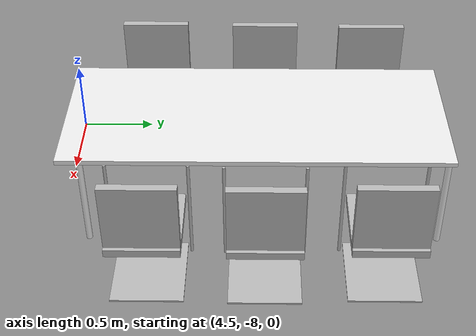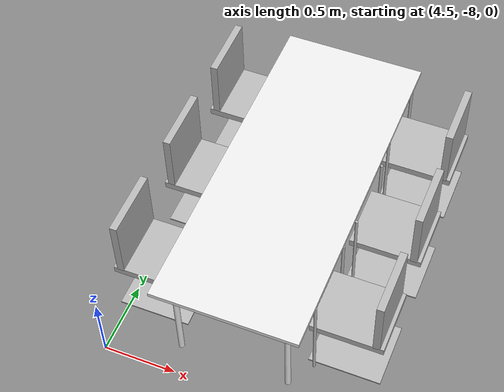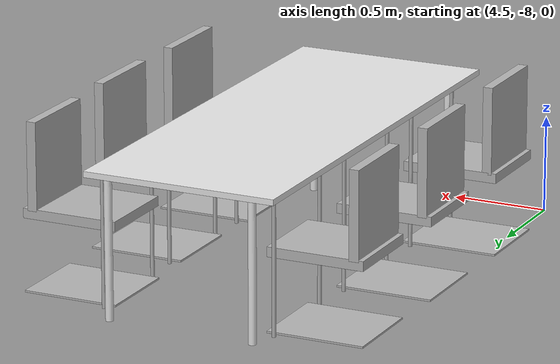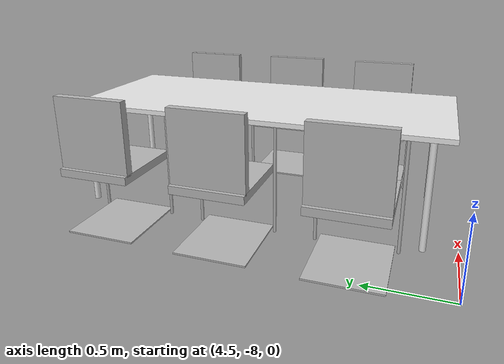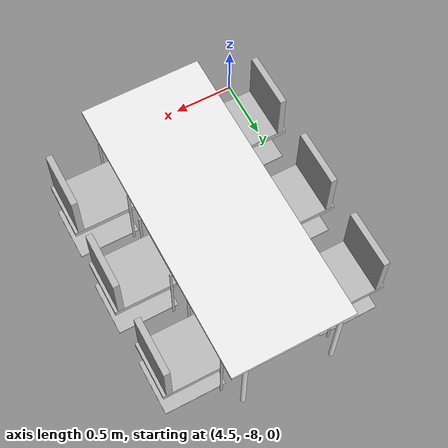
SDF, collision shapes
<sdf version="1.6">
 <model name="erica">
  <model name="table1_chair_tv_clone_clone_clone_clone">
   <model name="h_chair">
    <link name="link_0">
     <inertial>
      <mass>1</mass>
      <inertia>
       <ixx>0.166667</ixx>
       <ixy>0</ixy>
       <ixz>0</ixz>
       <iyy>0.166667</iyy>
       <iyz>0</iyz>
       <izz>0.166667</izz>
      </inertia>
     </inertial>
     <visual name="visual">
      <geometry>
       <mesh><uri>model://erica/elements/h_chair/meshes/chair.dae</uri><scale>1 1 1</scale></mesh>
      </geometry>
     </visual>
     <collision name="collision_4">
      <pose>0 0 0.41 0 -0 0</pose>
      <geometry><box><size>0.5 0.45 0.05</size></box></geometry>
      <surface>
       <friction>
        <ode><mu>1</mu><mu2>1</mu2><fdir1>0 0 0</fdir1><slip1>0</slip1><slip2>0</slip2></ode>
        <torsional>
         <coefficient>1</coefficient>
         <patch_radius>0</patch_radius>
         <surface_radius>0</surface_radius>
         <use_patch_radius>1</use_patch_radius>
         <ode><slip>0</slip></ode>
        </torsional>
       </friction>
       <bounce><restitution_coefficient>0</restitution_coefficient><threshold>1e+06</threshold></bounce>
       <contact>
        <collide_without_contact>0</collide_without_contact>
        <collide_without_contact_bitmask>1</collide_without_contact_bitmask>
        <collide_bitmask>1</collide_bitmask>
        <ode>
         <soft_cfm>0</soft_cfm>
         <soft_erp>0.2</soft_erp>
         <kp>1e+13</kp>
         <kd>1</kd>
         <max_vel>0.01</max_vel>
         <min_depth>0</min_depth>
        </ode>
        <bullet>
         <split_impulse>1</split_impulse>
         <split_impulse_penetration_threshold>-0.01</split_impulse_penetration_threshold>
         <soft_cfm>0</soft_cfm>
         <soft_erp>0.2</soft_erp>
         <kp>1e+13</kp>
         <kd>1</kd>
        </bullet>
       </contact>
      </surface>
     </collision>
     <collision name="collision_3">
      <pose>0 0 0.01 0 -0 0</pose>
      <geometry><box><size>0.5 0.45 0.01</size></box></geometry>
      <surface>
       <friction>
        <ode><mu>1</mu><mu2>1</mu2><fdir1>0 0 0</fdir1><slip1>0</slip1><slip2>0</slip2></ode>
        <torsional>
         <coefficient>1</coefficient>
         <patch_radius>0</patch_radius>
         <surface_radius>0</surface_radius>
         <use_patch_radius>1</use_patch_radius>
         <ode><slip>0</slip></ode>
        </torsional>
       </friction>
       <bounce><restitution_coefficient>0</restitution_coefficient><threshold>1e+06</threshold></bounce>
       <contact>
        <collide_without_contact>0</collide_without_contact>
        <collide_without_contact_bitmask>1</collide_without_contact_bitmask>
        <collide_bitmask>1</collide_bitmask>
        <ode>
         <soft_cfm>0</soft_cfm>
         <soft_erp>0.2</soft_erp>
         <kp>1e+13</kp>
         <kd>1</kd>
         <max_vel>0.01</max_vel>
         <min_depth>0</min_depth>
        </ode>
        <bullet>
         <split_impulse>1</split_impulse>
         <split_impulse_penetration_threshold>-0.01</split_impulse_penetration_threshold>
         <soft_cfm>0</soft_cfm>
         <soft_erp>0.2</soft_erp>
         <kp>1e+13</kp>
         <kd>1</kd>
        </bullet>
       </contact>
      </surface>
     </collision>
     <collision name="collision_5">
      <pose>-0.2 0 0.65 0 -0 0</pose>
      <geometry><box><size>0.05 0.45 0.45</size></box></geometry>
      <surface>
       <friction>
        <ode><mu>1</mu><mu2>1</mu2><fdir1>0 0 0</fdir1><slip1>0</slip1><slip2>0</slip2></ode>
        <torsional>
         <coefficient>1</coefficient>
         <patch_radius>0</patch_radius>
         <surface_radius>0</surface_radius>
         <use_patch_radius>1</use_patch_radius>
         <ode><slip>0</slip></ode>
        </torsional>
       </friction>
       <bounce><restitution_coefficient>0</restitution_coefficient><threshold>1e+06</threshold></bounce>
       <contact>
        <collide_without_contact>0</collide_without_contact>
        <collide_without_contact_bitmask>1</collide_without_contact_bitmask>
        <collide_bitmask>1</collide_bitmask>
        <ode>
         <soft_cfm>0</soft_cfm>
         <soft_erp>0.2</soft_erp>
         <kp>1e+13</kp>
         <kd>1</kd>
         <max_vel>0.01</max_vel>
         <min_depth>0</min_depth>
        </ode>
        <bullet>
         <split_impulse>1</split_impulse>
         <split_impulse_penetration_threshold>-0.01</split_impulse_penetration_threshold>
         <soft_cfm>0</soft_cfm>
         <soft_erp>0.2</soft_erp>
         <kp>1e+13</kp>
         <kd>1</kd>
        </bullet>
       </contact>
      </surface>
     </collision>
     <collision name="collision_6">
      <pose>0.2 -0.25 0.35 0 -0 0</pose>
      <geometry><cylinder><radius>0.01</radius><length>0.7</length></cylinder></geometry>
      <surface>
       <friction>
        <ode><mu>1</mu><mu2>1</mu2><fdir1>0 0 0</fdir1><slip1>0</slip1><slip2>0</slip2></ode>
        <torsional>
         <coefficient>1</coefficient>
         <patch_radius>0</patch_radius>
         <surface_radius>0</surface_radius>
         <use_patch_radius>1</use_patch_radius>
         <ode><slip>0</slip></ode>
        </torsional>
       </friction>
       <bounce><restitution_coefficient>0</restitution_coefficient><threshold>1e+06</threshold></bounce>
       <contact>
        <collide_without_contact>0</collide_without_contact>
        <collide_without_contact_bitmask>1</collide_without_contact_bitmask>
        <collide_bitmask>1</collide_bitmask>
        <ode>
         <soft_cfm>0</soft_cfm>
         <soft_erp>0.2</soft_erp>
         <kp>1e+13</kp>
         <kd>1</kd>
         <max_vel>0.01</max_vel>
         <min_depth>0</min_depth>
        </ode>
        <bullet>
         <split_impulse>1</split_impulse>
         <split_impulse_penetration_threshold>-0.01</split_impulse_penetration_threshold>
         <soft_cfm>0</soft_cfm>
         <soft_erp>0.2</soft_erp>
         <kp>1e+13</kp>
         <kd>1</kd>
        </bullet>
       </contact>
      </surface>
     </collision>
     <collision name="collision_7">
      <pose>0.2 0.25 0.35 0 -0 0</pose>
      <geometry><cylinder><radius>0.01</radius><length>0.7</length></cylinder></geometry>
      <surface>
       <friction>
        <ode><mu>1</mu><mu2>1</mu2><fdir1>0 0 0</fdir1><slip1>0</slip1><slip2>0</slip2></ode>
        <torsional>
         <coefficient>1</coefficient>
         <patch_radius>0</patch_radius>
         <surface_radius>0</surface_radius>
         <use_patch_radius>1</use_patch_radius>
         <ode><slip>0</slip></ode>
        </torsional>
       </friction>
       <bounce><restitution_coefficient>0</restitution_coefficient><threshold>1e+06</threshold></bounce>
       <contact>
        <collide_without_contact>0</collide_without_contact>
        <collide_without_contact_bitmask>1</collide_without_contact_bitmask>
        <collide_bitmask>1</collide_bitmask>
        <ode>
         <soft_cfm>0</soft_cfm>
         <soft_erp>0.2</soft_erp>
         <kp>1e+13</kp>
         <kd>1</kd>
         <max_vel>0.01</max_vel>
         <min_depth>0</min_depth>
        </ode>
        <bullet>
         <split_impulse>1</split_impulse>
         <split_impulse_penetration_threshold>-0.01</split_impulse_penetration_threshold>
         <soft_cfm>0</soft_cfm>
         <soft_erp>0.2</soft_erp>
         <kp>1e+13</kp>
         <kd>1</kd>
        </bullet>
       </contact>
      </surface>
     </collision>
    </link>
    <static>1</static>
    <pose>-0.65015 0.677818 0 0 -0 0</pose>
   </model>
   <model name="h_chair_clone">
    <link name="link_0">
     <inertial>
      <mass>1</mass>
      <inertia>
       <ixx>0.166667</ixx>
       <ixy>0</ixy>
       <ixz>0</ixz>
       <iyy>0.166667</iyy>
       <iyz>0</iyz>
       <izz>0.166667</izz>
      </inertia>
     </inertial>
     <visual name="visual">
      <geometry>
       <mesh><uri>model://erica/elements/h_chair/meshes/chair.dae</uri><scale>1 1 1</scale></mesh>
      </geometry>
     </visual>
     <collision name="collision_4">
      <pose>0 0 0.41 0 -0 0</pose>
      <geometry><box><size>0.5 0.45 0.05</size></box></geometry>
      <surface>
       <friction>
        <ode><mu>1</mu><mu2>1</mu2><fdir1>0 0 0</fdir1><slip1>0</slip1><slip2>0</slip2></ode>
        <torsional>
         <coefficient>1</coefficient>
         <patch_radius>0</patch_radius>
         <surface_radius>0</surface_radius>
         <use_patch_radius>1</use_patch_radius>
         <ode><slip>0</slip></ode>
        </torsional>
       </friction>
       <bounce><restitution_coefficient>0</restitution_coefficient><threshold>1e+06</threshold></bounce>
       <contact>
        <collide_without_contact>0</collide_without_contact>
        <collide_without_contact_bitmask>1</collide_without_contact_bitmask>
        <collide_bitmask>1</collide_bitmask>
        <ode>
         <soft_cfm>0</soft_cfm>
         <soft_erp>0.2</soft_erp>
         <kp>1e+13</kp>
         <kd>1</kd>
         <max_vel>0.01</max_vel>
         <min_depth>0</min_depth>
        </ode>
        <bullet>
         <split_impulse>1</split_impulse>
         <split_impulse_penetration_threshold>-0.01</split_impulse_penetration_threshold>
         <soft_cfm>0</soft_cfm>
         <soft_erp>0.2</soft_erp>
         <kp>1e+13</kp>
         <kd>1</kd>
        </bullet>
       </contact>
      </surface>
     </collision>
     <collision name="collision_3">
      <pose>0 0 0.01 0 -0 0</pose>
      <geometry><box><size>0.5 0.45 0.01</size></box></geometry>
      <surface>
       <friction>
        <ode><mu>1</mu><mu2>1</mu2><fdir1>0 0 0</fdir1><slip1>0</slip1><slip2>0</slip2></ode>
        <torsional>
         <coefficient>1</coefficient>
         <patch_radius>0</patch_radius>
         <surface_radius>0</surface_radius>
         <use_patch_radius>1</use_patch_radius>
         <ode><slip>0</slip></ode>
        </torsional>
       </friction>
       <bounce><restitution_coefficient>0</restitution_coefficient><threshold>1e+06</threshold></bounce>
       <contact>
        <collide_without_contact>0</collide_without_contact>
        <collide_without_contact_bitmask>1</collide_without_contact_bitmask>
        <collide_bitmask>1</collide_bitmask>
        <ode>
         <soft_cfm>0</soft_cfm>
         <soft_erp>0.2</soft_erp>
         <kp>1e+13</kp>
         <kd>1</kd>
         <max_vel>0.01</max_vel>
         <min_depth>0</min_depth>
        </ode>
        <bullet>
         <split_impulse>1</split_impulse>
         <split_impulse_penetration_threshold>-0.01</split_impulse_penetration_threshold>
         <soft_cfm>0</soft_cfm>
         <soft_erp>0.2</soft_erp>
         <kp>1e+13</kp>
         <kd>1</kd>
        </bullet>
       </contact>
      </surface>
     </collision>
     <collision name="collision_5">
      <pose>-0.2 0 0.65 0 -0 0</pose>
      <geometry><box><size>0.05 0.45 0.45</size></box></geometry>
      <surface>
       <friction>
        <ode><mu>1</mu><mu2>1</mu2><fdir1>0 0 0</fdir1><slip1>0</slip1><slip2>0</slip2></ode>
        <torsional>
         <coefficient>1</coefficient>
         <patch_radius>0</patch_radius>
         <surface_radius>0</surface_radius>
         <use_patch_radius>1</use_patch_radius>
         <ode><slip>0</slip></ode>
        </torsional>
       </friction>
       <bounce><restitution_coefficient>0</restitution_coefficient><threshold>1e+06</threshold></bounce>
       <contact>
        <collide_without_contact>0</collide_without_contact>
        <collide_without_contact_bitmask>1</collide_without_contact_bitmask>
        <collide_bitmask>1</collide_bitmask>
        <ode>
         <soft_cfm>0</soft_cfm>
         <soft_erp>0.2</soft_erp>
         <kp>1e+13</kp>
         <kd>1</kd>
         <max_vel>0.01</max_vel>
         <min_depth>0</min_depth>
        </ode>
        <bullet>
         <split_impulse>1</split_impulse>
         <split_impulse_penetration_threshold>-0.01</split_impulse_penetration_threshold>
         <soft_cfm>0</soft_cfm>
         <soft_erp>0.2</soft_erp>
         <kp>1e+13</kp>
         <kd>1</kd>
        </bullet>
       </contact>
      </surface>
     </collision>
     <collision name="collision_6">
      <pose>0.2 -0.25 0.35 0 -0 0</pose>
      <geometry><cylinder><radius>0.01</radius><length>0.7</length></cylinder></geometry>
      <surface>
       <friction>
        <ode><mu>1</mu><mu2>1</mu2><fdir1>0 0 0</fdir1><slip1>0</slip1><slip2>0</slip2></ode>
        <torsional>
         <coefficient>1</coefficient>
         <patch_radius>0</patch_radius>
         <surface_radius>0</surface_radius>
         <use_patch_radius>1</use_patch_radius>
         <ode><slip>0</slip></ode>
        </torsional>
       </friction>
       <bounce><restitution_coefficient>0</restitution_coefficient><threshold>1e+06</threshold></bounce>
       <contact>
        <collide_without_contact>0</collide_without_contact>
        <collide_without_contact_bitmask>1</collide_without_contact_bitmask>
        <collide_bitmask>1</collide_bitmask>
        <ode>
         <soft_cfm>0</soft_cfm>
         <soft_erp>0.2</soft_erp>
         <kp>1e+13</kp>
         <kd>1</kd>
         <max_vel>0.01</max_vel>
         <min_depth>0</min_depth>
        </ode>
        <bullet>
         <split_impulse>1</split_impulse>
         <split_impulse_penetration_threshold>-0.01</split_impulse_penetration_threshold>
         <soft_cfm>0</soft_cfm>
         <soft_erp>0.2</soft_erp>
         <kp>1e+13</kp>
         <kd>1</kd>
        </bullet>
       </contact>
      </surface>
     </collision>
     <collision name="collision_7">
      <pose>0.2 0.25 0.35 0 -0 0</pose>
      <geometry><cylinder><radius>0.01</radius><length>0.7</length></cylinder></geometry>
      <surface>
       <friction>
        <ode><mu>1</mu><mu2>1</mu2><fdir1>0 0 0</fdir1><slip1>0</slip1><slip2>0</slip2></ode>
        <torsional>
         <coefficient>1</coefficient>
         <patch_radius>0</patch_radius>
         <surface_radius>0</surface_radius>
         <use_patch_radius>1</use_patch_radius>
         <ode><slip>0</slip></ode>
        </torsional>
       </friction>
       <bounce><restitution_coefficient>0</restitution_coefficient><threshold>1e+06</threshold></bounce>
       <contact>
        <collide_without_contact>0</collide_without_contact>
        <collide_without_contact_bitmask>1</collide_without_contact_bitmask>
        <collide_bitmask>1</collide_bitmask>
        <ode>
         <soft_cfm>0</soft_cfm>
         <soft_erp>0.2</soft_erp>
         <kp>1e+13</kp>
         <kd>1</kd>
         <max_vel>0.01</max_vel>
         <min_depth>0</min_depth>
        </ode>
        <bullet>
         <split_impulse>1</split_impulse>
         <split_impulse_penetration_threshold>-0.01</split_impulse_penetration_threshold>
         <soft_cfm>0</soft_cfm>
         <soft_erp>0.2</soft_erp>
         <kp>1e+13</kp>
         <kd>1</kd>
        </bullet>
       </contact>
      </surface>
     </collision>
    </link>
    <static>1</static>
    <pose>-0.668032 -0.060178 0 0 -0 0</pose>
   </model>
   <model name="h_chair_clone_0">
    <link name="link_0">
     <inertial>
      <mass>1</mass>
      <inertia>
       <ixx>0.166667</ixx>
       <ixy>0</ixy>
       <ixz>0</ixz>
       <iyy>0.166667</iyy>
       <iyz>0</iyz>
       <izz>0.166667</izz>
      </inertia>
     </inertial>
     <visual name="visual">
      <geometry>
       <mesh><uri>model://erica/elements/h_chair/meshes/chair.dae</uri><scale>1 1 1</scale></mesh>
      </geometry>
     </visual>
     <collision name="collision_4">
      <pose>0 0 0.41 0 -0 0</pose>
      <geometry><box><size>0.5 0.45 0.05</size></box></geometry>
      <surface>
       <friction>
        <ode><mu>1</mu><mu2>1</mu2><fdir1>0 0 0</fdir1><slip1>0</slip1><slip2>0</slip2></ode>
        <torsional>
         <coefficient>1</coefficient>
         <patch_radius>0</patch_radius>
         <surface_radius>0</surface_radius>
         <use_patch_radius>1</use_patch_radius>
         <ode><slip>0</slip></ode>
        </torsional>
       </friction>
       <bounce><restitution_coefficient>0</restitution_coefficient><threshold>1e+06</threshold></bounce>
       <contact>
        <collide_without_contact>0</collide_without_contact>
        <collide_without_contact_bitmask>1</collide_without_contact_bitmask>
        <collide_bitmask>1</collide_bitmask>
        <ode>
         <soft_cfm>0</soft_cfm>
         <soft_erp>0.2</soft_erp>
         <kp>1e+13</kp>
         <kd>1</kd>
         <max_vel>0.01</max_vel>
         <min_depth>0</min_depth>
        </ode>
        <bullet>
         <split_impulse>1</split_impulse>
         <split_impulse_penetration_threshold>-0.01</split_impulse_penetration_threshold>
         <soft_cfm>0</soft_cfm>
         <soft_erp>0.2</soft_erp>
         <kp>1e+13</kp>
         <kd>1</kd>
        </bullet>
       </contact>
      </surface>
     </collision>
     <collision name="collision_3">
      <pose>0 0 0.01 0 -0 0</pose>
      <geometry><box><size>0.5 0.45 0.01</size></box></geometry>
      <surface>
       <friction>
        <ode><mu>1</mu><mu2>1</mu2><fdir1>0 0 0</fdir1><slip1>0</slip1><slip2>0</slip2></ode>
        <torsional>
         <coefficient>1</coefficient>
         <patch_radius>0</patch_radius>
         <surface_radius>0</surface_radius>
         <use_patch_radius>1</use_patch_radius>
         <ode><slip>0</slip></ode>
        </torsional>
       </friction>
       <bounce><restitution_coefficient>0</restitution_coefficient><threshold>1e+06</threshold></bounce>
       <contact>
        <collide_without_contact>0</collide_without_contact>
        <collide_without_contact_bitmask>1</collide_without_contact_bitmask>
        <collide_bitmask>1</collide_bitmask>
        <ode>
         <soft_cfm>0</soft_cfm>
         <soft_erp>0.2</soft_erp>
         <kp>1e+13</kp>
         <kd>1</kd>
         <max_vel>0.01</max_vel>
         <min_depth>0</min_depth>
        </ode>
        <bullet>
         <split_impulse>1</split_impulse>
         <split_impulse_penetration_threshold>-0.01</split_impulse_penetration_threshold>
         <soft_cfm>0</soft_cfm>
         <soft_erp>0.2</soft_erp>
         <kp>1e+13</kp>
         <kd>1</kd>
        </bullet>
       </contact>
      </surface>
     </collision>
     <collision name="collision_5">
      <pose>-0.2 0 0.65 0 -0 0</pose>
      <geometry><box><size>0.05 0.45 0.45</size></box></geometry>
      <surface>
       <friction>
        <ode><mu>1</mu><mu2>1</mu2><fdir1>0 0 0</fdir1><slip1>0</slip1><slip2>0</slip2></ode>
        <torsional>
         <coefficient>1</coefficient>
         <patch_radius>0</patch_radius>
         <surface_radius>0</surface_radius>
         <use_patch_radius>1</use_patch_radius>
         <ode><slip>0</slip></ode>
        </torsional>
       </friction>
       <bounce><restitution_coefficient>0</restitution_coefficient><threshold>1e+06</threshold></bounce>
       <contact>
        <collide_without_contact>0</collide_without_contact>
        <collide_without_contact_bitmask>1</collide_without_contact_bitmask>
        <collide_bitmask>1</collide_bitmask>
        <ode>
         <soft_cfm>0</soft_cfm>
         <soft_erp>0.2</soft_erp>
         <kp>1e+13</kp>
         <kd>1</kd>
         <max_vel>0.01</max_vel>
         <min_depth>0</min_depth>
        </ode>
        <bullet>
         <split_impulse>1</split_impulse>
         <split_impulse_penetration_threshold>-0.01</split_impulse_penetration_threshold>
         <soft_cfm>0</soft_cfm>
         <soft_erp>0.2</soft_erp>
         <kp>1e+13</kp>
         <kd>1</kd>
        </bullet>
       </contact>
      </surface>
     </collision>
     <collision name="collision_6">
      <pose>0.2 -0.25 0.35 0 -0 0</pose>
      <geometry><cylinder><radius>0.01</radius><length>0.7</length></cylinder></geometry>
      <surface>
       <friction>
        <ode><mu>1</mu><mu2>1</mu2><fdir1>0 0 0</fdir1><slip1>0</slip1><slip2>0</slip2></ode>
        <torsional>
         <coefficient>1</coefficient>
         <patch_radius>0</patch_radius>
         <surface_radius>0</surface_radius>
         <use_patch_radius>1</use_patch_radius>
         <ode><slip>0</slip></ode>
        </torsional>
       </friction>
       <bounce><restitution_coefficient>0</restitution_coefficient><threshold>1e+06</threshold></bounce>
       <contact>
        <collide_without_contact>0</collide_without_contact>
        <collide_without_contact_bitmask>1</collide_without_contact_bitmask>
        <collide_bitmask>1</collide_bitmask>
        <ode>
         <soft_cfm>0</soft_cfm>
         <soft_erp>0.2</soft_erp>
         <kp>1e+13</kp>
         <kd>1</kd>
         <max_vel>0.01</max_vel>
         <min_depth>0</min_depth>
        </ode>
        <bullet>
         <split_impulse>1</split_impulse>
         <split_impulse_penetration_threshold>-0.01</split_impulse_penetration_threshold>
         <soft_cfm>0</soft_cfm>
         <soft_erp>0.2</soft_erp>
         <kp>1e+13</kp>
         <kd>1</kd>
        </bullet>
       </contact>
      </surface>
     </collision>
     <collision name="collision_7">
      <pose>0.2 0.25 0.35 0 -0 0</pose>
      <geometry><cylinder><radius>0.01</radius><length>0.7</length></cylinder></geometry>
      <surface>
       <friction>
        <ode><mu>1</mu><mu2>1</mu2><fdir1>0 0 0</fdir1><slip1>0</slip1><slip2>0</slip2></ode>
        <torsional>
         <coefficient>1</coefficient>
         <patch_radius>0</patch_radius>
         <surface_radius>0</surface_radius>
         <use_patch_radius>1</use_patch_radius>
         <ode><slip>0</slip></ode>
        </torsional>
       </friction>
       <bounce><restitution_coefficient>0</restitution_coefficient><threshold>1e+06</threshold></bounce>
       <contact>
        <collide_without_contact>0</collide_without_contact>
        <collide_without_contact_bitmask>1</collide_without_contact_bitmask>
        <collide_bitmask>1</collide_bitmask>
        <ode>
         <soft_cfm>0</soft_cfm>
         <soft_erp>0.2</soft_erp>
         <kp>1e+13</kp>
         <kd>1</kd>
         <max_vel>0.01</max_vel>
         <min_depth>0</min_depth>
        </ode>
        <bullet>
         <split_impulse>1</split_impulse>
         <split_impulse_penetration_threshold>-0.01</split_impulse_penetration_threshold>
         <soft_cfm>0</soft_cfm>
         <soft_erp>0.2</soft_erp>
         <kp>1e+13</kp>
         <kd>1</kd>
        </bullet>
       </contact>
      </surface>
     </collision>
    </link>
    <static>1</static>
    <pose>-0.679941 -0.822301 0 0 -0 0</pose>
   </model>
   <model name="h_chair_clone_1">
    <link name="link_0">
     <inertial>
      <mass>1</mass>
      <inertia>
       <ixx>0.166667</ixx>
       <ixy>0</ixy>
       <ixz>0</ixz>
       <iyy>0.166667</iyy>
       <iyz>0</iyz>
       <izz>0.166667</izz>
      </inertia>
     </inertial>
     <visual name="visual">
      <geometry>
       <mesh><uri>model://erica/elements/h_chair/meshes/chair.dae</uri><scale>1 1 1</scale></mesh>
      </geometry>
     </visual>
     <collision name="collision_4">
      <pose>0 0 0.41 0 -0 0</pose>
      <geometry><box><size>0.5 0.45 0.05</size></box></geometry>
      <surface>
       <friction>
        <ode><mu>1</mu><mu2>1</mu2><fdir1>0 0 0</fdir1><slip1>0</slip1><slip2>0</slip2></ode>
        <torsional>
         <coefficient>1</coefficient>
         <patch_radius>0</patch_radius>
         <surface_radius>0</surface_radius>
         <use_patch_radius>1</use_patch_radius>
         <ode><slip>0</slip></ode>
        </torsional>
       </friction>
       <bounce><restitution_coefficient>0</restitution_coefficient><threshold>1e+06</threshold></bounce>
       <contact>
        <collide_without_contact>0</collide_without_contact>
        <collide_without_contact_bitmask>1</collide_without_contact_bitmask>
        <collide_bitmask>1</collide_bitmask>
        <ode>
         <soft_cfm>0</soft_cfm>
         <soft_erp>0.2</soft_erp>
         <kp>1e+13</kp>
         <kd>1</kd>
         <max_vel>0.01</max_vel>
         <min_depth>0</min_depth>
        </ode>
        <bullet>
         <split_impulse>1</split_impulse>
         <split_impulse_penetration_threshold>-0.01</split_impulse_penetration_threshold>
         <soft_cfm>0</soft_cfm>
         <soft_erp>0.2</soft_erp>
         <kp>1e+13</kp>
         <kd>1</kd>
        </bullet>
       </contact>
      </surface>
     </collision>
     <collision name="collision_3">
      <pose>0 0 0.01 0 -0 0</pose>
      <geometry><box><size>0.5 0.45 0.01</size></box></geometry>
      <surface>
       <friction>
        <ode><mu>1</mu><mu2>1</mu2><fdir1>0 0 0</fdir1><slip1>0</slip1><slip2>0</slip2></ode>
        <torsional>
         <coefficient>1</coefficient>
         <patch_radius>0</patch_radius>
         <surface_radius>0</surface_radius>
         <use_patch_radius>1</use_patch_radius>
         <ode><slip>0</slip></ode>
        </torsional>
       </friction>
       <bounce><restitution_coefficient>0</restitution_coefficient><threshold>1e+06</threshold></bounce>
       <contact>
        <collide_without_contact>0</collide_without_contact>
        <collide_without_contact_bitmask>1</collide_without_contact_bitmask>
        <collide_bitmask>1</collide_bitmask>
        <ode>
         <soft_cfm>0</soft_cfm>
         <soft_erp>0.2</soft_erp>
         <kp>1e+13</kp>
         <kd>1</kd>
         <max_vel>0.01</max_vel>
         <min_depth>0</min_depth>
        </ode>
        <bullet>
         <split_impulse>1</split_impulse>
         <split_impulse_penetration_threshold>-0.01</split_impulse_penetration_threshold>
         <soft_cfm>0</soft_cfm>
         <soft_erp>0.2</soft_erp>
         <kp>1e+13</kp>
         <kd>1</kd>
        </bullet>
       </contact>
      </surface>
     </collision>
     <collision name="collision_5">
      <pose>-0.2 0 0.65 0 -0 0</pose>
      <geometry><box><size>0.05 0.45 0.45</size></box></geometry>
      <surface>
       <friction>
        <ode><mu>1</mu><mu2>1</mu2><fdir1>0 0 0</fdir1><slip1>0</slip1><slip2>0</slip2></ode>
        <torsional>
         <coefficient>1</coefficient>
         <patch_radius>0</patch_radius>
         <surface_radius>0</surface_radius>
         <use_patch_radius>1</use_patch_radius>
         <ode><slip>0</slip></ode>
        </torsional>
       </friction>
       <bounce><restitution_coefficient>0</restitution_coefficient><threshold>1e+06</threshold></bounce>
       <contact>
        <collide_without_contact>0</collide_without_contact>
        <collide_without_contact_bitmask>1</collide_without_contact_bitmask>
        <collide_bitmask>1</collide_bitmask>
        <ode>
         <soft_cfm>0</soft_cfm>
         <soft_erp>0.2</soft_erp>
         <kp>1e+13</kp>
         <kd>1</kd>
         <max_vel>0.01</max_vel>
         <min_depth>0</min_depth>
        </ode>
        <bullet>
         <split_impulse>1</split_impulse>
         <split_impulse_penetration_threshold>-0.01</split_impulse_penetration_threshold>
         <soft_cfm>0</soft_cfm>
         <soft_erp>0.2</soft_erp>
         <kp>1e+13</kp>
         <kd>1</kd>
        </bullet>
       </contact>
      </surface>
     </collision>
     <collision name="collision_6">
      <pose>0.2 -0.25 0.35 0 -0 0</pose>
      <geometry><cylinder><radius>0.01</radius><length>0.7</length></cylinder></geometry>
      <surface>
       <friction>
        <ode><mu>1</mu><mu2>1</mu2><fdir1>0 0 0</fdir1><slip1>0</slip1><slip2>0</slip2></ode>
        <torsional>
         <coefficient>1</coefficient>
         <patch_radius>0</patch_radius>
         <surface_radius>0</surface_radius>
         <use_patch_radius>1</use_patch_radius>
         <ode><slip>0</slip></ode>
        </torsional>
       </friction>
       <bounce><restitution_coefficient>0</restitution_coefficient><threshold>1e+06</threshold></bounce>
       <contact>
        <collide_without_contact>0</collide_without_contact>
        <collide_without_contact_bitmask>1</collide_without_contact_bitmask>
        <collide_bitmask>1</collide_bitmask>
        <ode>
         <soft_cfm>0</soft_cfm>
         <soft_erp>0.2</soft_erp>
         <kp>1e+13</kp>
         <kd>1</kd>
         <max_vel>0.01</max_vel>
         <min_depth>0</min_depth>
        </ode>
        <bullet>
         <split_impulse>1</split_impulse>
         <split_impulse_penetration_threshold>-0.01</split_impulse_penetration_threshold>
         <soft_cfm>0</soft_cfm>
         <soft_erp>0.2</soft_erp>
         <kp>1e+13</kp>
         <kd>1</kd>
        </bullet>
       </contact>
      </surface>
     </collision>
     <collision name="collision_7">
      <pose>0.2 0.25 0.35 0 -0 0</pose>
      <geometry><cylinder><radius>0.01</radius><length>0.7</length></cylinder></geometry>
      <surface>
       <friction>
        <ode><mu>1</mu><mu2>1</mu2><fdir1>0 0 0</fdir1><slip1>0</slip1><slip2>0</slip2></ode>
        <torsional>
         <coefficient>1</coefficient>
         <patch_radius>0</patch_radius>
         <surface_radius>0</surface_radius>
         <use_patch_radius>1</use_patch_radius>
         <ode><slip>0</slip></ode>
        </torsional>
       </friction>
       <bounce><restitution_coefficient>0</restitution_coefficient><threshold>1e+06</threshold></bounce>
       <contact>
        <collide_without_contact>0</collide_without_contact>
        <collide_without_contact_bitmask>1</collide_without_contact_bitmask>
        <collide_bitmask>1</collide_bitmask>
        <ode>
         <soft_cfm>0</soft_cfm>
         <soft_erp>0.2</soft_erp>
         <kp>1e+13</kp>
         <kd>1</kd>
         <max_vel>0.01</max_vel>
         <min_depth>0</min_depth>
        </ode>
        <bullet>
         <split_impulse>1</split_impulse>
         <split_impulse_penetration_threshold>-0.01</split_impulse_penetration_threshold>
         <soft_cfm>0</soft_cfm>
         <soft_erp>0.2</soft_erp>
         <kp>1e+13</kp>
         <kd>1</kd>
        </bullet>
       </contact>
      </surface>
     </collision>
    </link>
    <static>1</static>
    <pose>0.664034 0.665185 0 0 -0 3.13853</pose>
   </model>
   <model name="h_chair_clone_1_clone">
    <link name="link_0">
     <inertial>
      <mass>1</mass>
      <inertia>
       <ixx>0.166667</ixx>
       <ixy>0</ixy>
       <ixz>0</ixz>
       <iyy>0.166667</iyy>
       <iyz>0</iyz>
       <izz>0.166667</izz>
      </inertia>
     </inertial>
     <visual name="visual">
      <geometry>
       <mesh><uri>model://erica/elements/h_chair/meshes/chair.dae</uri><scale>1 1 1</scale></mesh>
      </geometry>
     </visual>
     <collision name="collision_4">
      <pose>0 0 0.41 0 -0 0</pose>
      <geometry><box><size>0.5 0.45 0.05</size></box></geometry>
      <surface>
       <friction>
        <ode><mu>1</mu><mu2>1</mu2><fdir1>0 0 0</fdir1><slip1>0</slip1><slip2>0</slip2></ode>
        <torsional>
         <coefficient>1</coefficient>
         <patch_radius>0</patch_radius>
         <surface_radius>0</surface_radius>
         <use_patch_radius>1</use_patch_radius>
         <ode><slip>0</slip></ode>
        </torsional>
       </friction>
       <bounce><restitution_coefficient>0</restitution_coefficient><threshold>1e+06</threshold></bounce>
       <contact>
        <collide_without_contact>0</collide_without_contact>
        <collide_without_contact_bitmask>1</collide_without_contact_bitmask>
        <collide_bitmask>1</collide_bitmask>
        <ode>
         <soft_cfm>0</soft_cfm>
         <soft_erp>0.2</soft_erp>
         <kp>1e+13</kp>
         <kd>1</kd>
         <max_vel>0.01</max_vel>
         <min_depth>0</min_depth>
        </ode>
        <bullet>
         <split_impulse>1</split_impulse>
         <split_impulse_penetration_threshold>-0.01</split_impulse_penetration_threshold>
         <soft_cfm>0</soft_cfm>
         <soft_erp>0.2</soft_erp>
         <kp>1e+13</kp>
         <kd>1</kd>
        </bullet>
       </contact>
      </surface>
     </collision>
     <collision name="collision_3">
      <pose>0 0 0.01 0 -0 0</pose>
      <geometry><box><size>0.5 0.45 0.01</size></box></geometry>
      <surface>
       <friction>
        <ode><mu>1</mu><mu2>1</mu2><fdir1>0 0 0</fdir1><slip1>0</slip1><slip2>0</slip2></ode>
        <torsional>
         <coefficient>1</coefficient>
         <patch_radius>0</patch_radius>
         <surface_radius>0</surface_radius>
         <use_patch_radius>1</use_patch_radius>
         <ode><slip>0</slip></ode>
        </torsional>
       </friction>
       <bounce><restitution_coefficient>0</restitution_coefficient><threshold>1e+06</threshold></bounce>
       <contact>
        <collide_without_contact>0</collide_without_contact>
        <collide_without_contact_bitmask>1</collide_without_contact_bitmask>
        <collide_bitmask>1</collide_bitmask>
        <ode>
         <soft_cfm>0</soft_cfm>
         <soft_erp>0.2</soft_erp>
         <kp>1e+13</kp>
         <kd>1</kd>
         <max_vel>0.01</max_vel>
         <min_depth>0</min_depth>
        </ode>
        <bullet>
         <split_impulse>1</split_impulse>
         <split_impulse_penetration_threshold>-0.01</split_impulse_penetration_threshold>
         <soft_cfm>0</soft_cfm>
         <soft_erp>0.2</soft_erp>
         <kp>1e+13</kp>
         <kd>1</kd>
        </bullet>
       </contact>
      </surface>
     </collision>
     <collision name="collision_5">
      <pose>-0.2 0 0.65 0 -0 0</pose>
      <geometry><box><size>0.05 0.45 0.45</size></box></geometry>
      <surface>
       <friction>
        <ode><mu>1</mu><mu2>1</mu2><fdir1>0 0 0</fdir1><slip1>0</slip1><slip2>0</slip2></ode>
        <torsional>
         <coefficient>1</coefficient>
         <patch_radius>0</patch_radius>
         <surface_radius>0</surface_radius>
         <use_patch_radius>1</use_patch_radius>
         <ode><slip>0</slip></ode>
        </torsional>
       </friction>
       <bounce><restitution_coefficient>0</restitution_coefficient><threshold>1e+06</threshold></bounce>
       <contact>
        <collide_without_contact>0</collide_without_contact>
        <collide_without_contact_bitmask>1</collide_without_contact_bitmask>
        <collide_bitmask>1</collide_bitmask>
        <ode>
         <soft_cfm>0</soft_cfm>
         <soft_erp>0.2</soft_erp>
         <kp>1e+13</kp>
         <kd>1</kd>
         <max_vel>0.01</max_vel>
         <min_depth>0</min_depth>
        </ode>
        <bullet>
         <split_impulse>1</split_impulse>
         <split_impulse_penetration_threshold>-0.01</split_impulse_penetration_threshold>
         <soft_cfm>0</soft_cfm>
         <soft_erp>0.2</soft_erp>
         <kp>1e+13</kp>
         <kd>1</kd>
        </bullet>
       </contact>
      </surface>
     </collision>
     <collision name="collision_6">
      <pose>0.2 -0.25 0.35 0 -0 0</pose>
      <geometry><cylinder><radius>0.01</radius><length>0.7</length></cylinder></geometry>
      <surface>
       <friction>
        <ode><mu>1</mu><mu2>1</mu2><fdir1>0 0 0</fdir1><slip1>0</slip1><slip2>0</slip2></ode>
        <torsional>
         <coefficient>1</coefficient>
         <patch_radius>0</patch_radius>
         <surface_radius>0</surface_radius>
         <use_patch_radius>1</use_patch_radius>
         <ode><slip>0</slip></ode>
        </torsional>
       </friction>
       <bounce><restitution_coefficient>0</restitution_coefficient><threshold>1e+06</threshold></bounce>
       <contact>
        <collide_without_contact>0</collide_without_contact>
        <collide_without_contact_bitmask>1</collide_without_contact_bitmask>
        <collide_bitmask>1</collide_bitmask>
        <ode>
         <soft_cfm>0</soft_cfm>
         <soft_erp>0.2</soft_erp>
         <kp>1e+13</kp>
         <kd>1</kd>
         <max_vel>0.01</max_vel>
         <min_depth>0</min_depth>
        </ode>
        <bullet>
         <split_impulse>1</split_impulse>
         <split_impulse_penetration_threshold>-0.01</split_impulse_penetration_threshold>
         <soft_cfm>0</soft_cfm>
         <soft_erp>0.2</soft_erp>
         <kp>1e+13</kp>
         <kd>1</kd>
        </bullet>
       </contact>
      </surface>
     </collision>
     <collision name="collision_7">
      <pose>0.2 0.25 0.35 0 -0 0</pose>
      <geometry><cylinder><radius>0.01</radius><length>0.7</length></cylinder></geometry>
      <surface>
       <friction>
        <ode><mu>1</mu><mu2>1</mu2><fdir1>0 0 0</fdir1><slip1>0</slip1><slip2>0</slip2></ode>
        <torsional>
         <coefficient>1</coefficient>
         <patch_radius>0</patch_radius>
         <surface_radius>0</surface_radius>
         <use_patch_radius>1</use_patch_radius>
         <ode><slip>0</slip></ode>
        </torsional>
       </friction>
       <bounce><restitution_coefficient>0</restitution_coefficient><threshold>1e+06</threshold></bounce>
       <contact>
        <collide_without_contact>0</collide_without_contact>
        <collide_without_contact_bitmask>1</collide_without_contact_bitmask>
        <collide_bitmask>1</collide_bitmask>
        <ode>
         <soft_cfm>0</soft_cfm>
         <soft_erp>0.2</soft_erp>
         <kp>1e+13</kp>
         <kd>1</kd>
         <max_vel>0.01</max_vel>
         <min_depth>0</min_depth>
        </ode>
        <bullet>
         <split_impulse>1</split_impulse>
         <split_impulse_penetration_threshold>-0.01</split_impulse_penetration_threshold>
         <soft_cfm>0</soft_cfm>
         <soft_erp>0.2</soft_erp>
         <kp>1e+13</kp>
         <kd>1</kd>
        </bullet>
       </contact>
      </surface>
     </collision>
    </link>
    <static>1</static>
    <pose>0.671484 -0.777358 0 0 -0 3.13853</pose>
   </model>
   <model name="h_chair_clone_1_clone_clone">
    <link name="link_0">
     <inertial>
      <mass>1</mass>
      <inertia>
       <ixx>0.166667</ixx>
       <ixy>0</ixy>
       <ixz>0</ixz>
       <iyy>0.166667</iyy>
       <iyz>0</iyz>
       <izz>0.166667</izz>
      </inertia>
     </inertial>
     <visual name="visual">
      <geometry>
       <mesh><uri>model://erica/elements/h_chair/meshes/chair.dae</uri><scale>1 1 1</scale></mesh>
      </geometry>
     </visual>
     <collision name="collision_4">
      <pose>0 0 0.41 0 -0 0</pose>
      <geometry><box><size>0.5 0.45 0.05</size></box></geometry>
      <surface>
       <friction>
        <ode><mu>1</mu><mu2>1</mu2><fdir1>0 0 0</fdir1><slip1>0</slip1><slip2>0</slip2></ode>
        <torsional>
         <coefficient>1</coefficient>
         <patch_radius>0</patch_radius>
         <surface_radius>0</surface_radius>
         <use_patch_radius>1</use_patch_radius>
         <ode><slip>0</slip></ode>
        </torsional>
       </friction>
       <bounce><restitution_coefficient>0</restitution_coefficient><threshold>1e+06</threshold></bounce>
       <contact>
        <collide_without_contact>0</collide_without_contact>
        <collide_without_contact_bitmask>1</collide_without_contact_bitmask>
        <collide_bitmask>1</collide_bitmask>
        <ode>
         <soft_cfm>0</soft_cfm>
         <soft_erp>0.2</soft_erp>
         <kp>1e+13</kp>
         <kd>1</kd>
         <max_vel>0.01</max_vel>
         <min_depth>0</min_depth>
        </ode>
        <bullet>
         <split_impulse>1</split_impulse>
         <split_impulse_penetration_threshold>-0.01</split_impulse_penetration_threshold>
         <soft_cfm>0</soft_cfm>
         <soft_erp>0.2</soft_erp>
         <kp>1e+13</kp>
         <kd>1</kd>
        </bullet>
       </contact>
      </surface>
     </collision>
     <collision name="collision_3">
      <pose>0 0 0.01 0 -0 0</pose>
      <geometry><box><size>0.5 0.45 0.01</size></box></geometry>
      <surface>
       <friction>
        <ode><mu>1</mu><mu2>1</mu2><fdir1>0 0 0</fdir1><slip1>0</slip1><slip2>0</slip2></ode>
        <torsional>
         <coefficient>1</coefficient>
         <patch_radius>0</patch_radius>
         <surface_radius>0</surface_radius>
         <use_patch_radius>1</use_patch_radius>
         <ode><slip>0</slip></ode>
        </torsional>
       </friction>
       <bounce><restitution_coefficient>0</restitution_coefficient><threshold>1e+06</threshold></bounce>
       <contact>
        <collide_without_contact>0</collide_without_contact>
        <collide_without_contact_bitmask>1</collide_without_contact_bitmask>
        <collide_bitmask>1</collide_bitmask>
        <ode>
         <soft_cfm>0</soft_cfm>
         <soft_erp>0.2</soft_erp>
         <kp>1e+13</kp>
         <kd>1</kd>
         <max_vel>0.01</max_vel>
         <min_depth>0</min_depth>
        </ode>
        <bullet>
         <split_impulse>1</split_impulse>
         <split_impulse_penetration_threshold>-0.01</split_impulse_penetration_threshold>
         <soft_cfm>0</soft_cfm>
         <soft_erp>0.2</soft_erp>
         <kp>1e+13</kp>
         <kd>1</kd>
        </bullet>
       </contact>
      </surface>
     </collision>
     <collision name="collision_5">
      <pose>-0.2 0 0.65 0 -0 0</pose>
      <geometry><box><size>0.05 0.45 0.45</size></box></geometry>
      <surface>
       <friction>
        <ode><mu>1</mu><mu2>1</mu2><fdir1>0 0 0</fdir1><slip1>0</slip1><slip2>0</slip2></ode>
        <torsional>
         <coefficient>1</coefficient>
         <patch_radius>0</patch_radius>
         <surface_radius>0</surface_radius>
         <use_patch_radius>1</use_patch_radius>
         <ode><slip>0</slip></ode>
        </torsional>
       </friction>
       <bounce><restitution_coefficient>0</restitution_coefficient><threshold>1e+06</threshold></bounce>
       <contact>
        <collide_without_contact>0</collide_without_contact>
        <collide_without_contact_bitmask>1</collide_without_contact_bitmask>
        <collide_bitmask>1</collide_bitmask>
        <ode>
         <soft_cfm>0</soft_cfm>
         <soft_erp>0.2</soft_erp>
         <kp>1e+13</kp>
         <kd>1</kd>
         <max_vel>0.01</max_vel>
         <min_depth>0</min_depth>
        </ode>
        <bullet>
         <split_impulse>1</split_impulse>
         <split_impulse_penetration_threshold>-0.01</split_impulse_penetration_threshold>
         <soft_cfm>0</soft_cfm>
         <soft_erp>0.2</soft_erp>
         <kp>1e+13</kp>
         <kd>1</kd>
        </bullet>
       </contact>
      </surface>
     </collision>
     <collision name="collision_6">
      <pose>0.2 -0.25 0.35 0 -0 0</pose>
      <geometry><cylinder><radius>0.01</radius><length>0.7</length></cylinder></geometry>
      <surface>
       <friction>
        <ode><mu>1</mu><mu2>1</mu2><fdir1>0 0 0</fdir1><slip1>0</slip1><slip2>0</slip2></ode>
        <torsional>
         <coefficient>1</coefficient>
         <patch_radius>0</patch_radius>
         <surface_radius>0</surface_radius>
         <use_patch_radius>1</use_patch_radius>
         <ode><slip>0</slip></ode>
        </torsional>
       </friction>
       <bounce><restitution_coefficient>0</restitution_coefficient><threshold>1e+06</threshold></bounce>
       <contact>
        <collide_without_contact>0</collide_without_contact>
        <collide_without_contact_bitmask>1</collide_without_contact_bitmask>
        <collide_bitmask>1</collide_bitmask>
        <ode>
         <soft_cfm>0</soft_cfm>
         <soft_erp>0.2</soft_erp>
         <kp>1e+13</kp>
         <kd>1</kd>
         <max_vel>0.01</max_vel>
         <min_depth>0</min_depth>
        </ode>
        <bullet>
         <split_impulse>1</split_impulse>
         <split_impulse_penetration_threshold>-0.01</split_impulse_penetration_threshold>
         <soft_cfm>0</soft_cfm>
         <soft_erp>0.2</soft_erp>
         <kp>1e+13</kp>
         <kd>1</kd>
        </bullet>
       </contact>
      </surface>
     </collision>
     <collision name="collision_7">
      <pose>0.2 0.25 0.35 0 -0 0</pose>
      <geometry><cylinder><radius>0.01</radius><length>0.7</length></cylinder></geometry>
      <surface>
       <friction>
        <ode><mu>1</mu><mu2>1</mu2><fdir1>0 0 0</fdir1><slip1>0</slip1><slip2>0</slip2></ode>
        <torsional>
         <coefficient>1</coefficient>
         <patch_radius>0</patch_radius>
         <surface_radius>0</surface_radius>
         <use_patch_radius>1</use_patch_radius>
         <ode><slip>0</slip></ode>
        </torsional>
       </friction>
       <bounce><restitution_coefficient>0</restitution_coefficient><threshold>1e+06</threshold></bounce>
       <contact>
        <collide_without_contact>0</collide_without_contact>
        <collide_without_contact_bitmask>1</collide_without_contact_bitmask>
        <collide_bitmask>1</collide_bitmask>
        <ode>
         <soft_cfm>0</soft_cfm>
         <soft_erp>0.2</soft_erp>
         <kp>1e+13</kp>
         <kd>1</kd>
         <max_vel>0.01</max_vel>
         <min_depth>0</min_depth>
        </ode>
        <bullet>
         <split_impulse>1</split_impulse>
         <split_impulse_penetration_threshold>-0.01</split_impulse_penetration_threshold>
         <soft_cfm>0</soft_cfm>
         <soft_erp>0.2</soft_erp>
         <kp>1e+13</kp>
         <kd>1</kd>
        </bullet>
       </contact>
      </surface>
     </collision>
    </link>
    <static>1</static>
    <pose>0.685434 -0.0617 0 0 -0 3.13853</pose>
   </model>
   <model name="h_table">
    <link name="link">
     <inertial>
      <inertia><ixx>1</ixx><ixy>0</ixy><ixz>0</ixz><iyy>1</iyy><iyz>0</iyz><izz>1</izz></inertia>
      <mass>1</mass>
     </inertial>
     <visual name="visual1">
      <pose>-0.5 0 0.72 0 -0 0</pose>
      <geometry><box><size>2.4 1 0.04</size></box></geometry>
      <material>
       <script><uri>file://media/materials/scripts/gazebo.material</uri><name>Gazebo/White</name></script>
       <ambient>1 1 1 1</ambient>
       <diffuse>1 1 1 1</diffuse>
       <specular>0.2 0.2 0.2 1</specular>
       <emissive>0 0 0 1</emissive>
       <shader type="vertex"><normal_map>__default__</normal_map></shader>
      </material>
     </visual>
     <visual name="front_right_leg">
      <pose>0.68 -0.38 0.36 0 -0 0</pose>
      <geometry><cylinder><radius>0.02</radius><length>0.72</length></cylinder></geometry>
      <material>
       <script><uri>file://media/materials/scripts/gazebo.material</uri><name>Gazebo/White</name></script>
       <ambient>0.3 0.3 0.3 1</ambient>
       <diffuse>0.7 0.7 0.7 1</diffuse>
       <specular>0.01 0.01 0.01 1</specular>
       <emissive>0 0 0 1</emissive>
       <shader type="vertex"><normal_map>__default__</normal_map></shader>
      </material>
     </visual>
     <visual name="back_left_leg">
      <pose>-1.58 0.38 0.36 0 -0 0</pose>
      <geometry><cylinder><radius>0.02</radius><length>0.72</length></cylinder></geometry>
      <material>
       <script><uri>file://media/materials/scripts/gazebo.material</uri><name>Gazebo/White</name></script>
       <ambient>0.3 0.3 0.3 1</ambient>
       <diffuse>0.7 0.7 0.7 1</diffuse>
       <specular>0.01 0.01 0.01 1</specular>
       <emissive>0 0 0 1</emissive>
       <shader type="vertex"><normal_map>__default__</normal_map></shader>
      </material>
     </visual>
     <visual name="back_right_leg">
      <pose>-1.58 -0.38 0.36 0 -0 0</pose>
      <geometry><cylinder><radius>0.02</radius><length>0.72</length></cylinder></geometry>
      <material>
       <script><uri>file://media/materials/scripts/gazebo.material</uri><name>Gazebo/White</name></script>
       <ambient>0.3 0.3 0.3 1</ambient>
       <diffuse>0.7 0.7 0.7 1</diffuse>
       <specular>0.01 0.01 0.01 1</specular>
       <emissive>0 0 0 1</emissive>
       <shader type="vertex"><normal_map>__default__</normal_map></shader>
      </material>
     </visual>
     <visual name="front_left_leg">
      <pose>0.68 0.38 0.36 0 -0 0</pose>
      <geometry><cylinder><radius>0.02</radius><length>0.72</length></cylinder></geometry>
      <material>
       <script><uri>file://media/materials/scripts/gazebo.material</uri><name>Gazebo/White</name></script>
       <ambient>0.3 0.3 0.3 1</ambient>
       <diffuse>0.7 0.7 0.7 1</diffuse>
       <specular>0.01 0.01 0.01 1</specular>
       <emissive>0 0 0 1</emissive>
       <shader type="vertex"><normal_map>__default__</normal_map></shader>
      </material>
     </visual>
     <collision name="back_right_leg">
      <pose>-1.58 -0.38 0.36 0 -0 0</pose>
      <geometry><cylinder><radius>0.02</radius><length>0.72</length></cylinder></geometry>
      <surface>
       <friction>
        <ode><mu>1</mu><mu2>1</mu2><fdir1>0 0 0</fdir1><slip1>0</slip1><slip2>0</slip2></ode>
        <torsional>
         <coefficient>1</coefficient>
         <patch_radius>0</patch_radius>
         <surface_radius>0</surface_radius>
         <use_patch_radius>1</use_patch_radius>
         <ode><slip>0</slip></ode>
        </torsional>
       </friction>
       <bounce><restitution_coefficient>0</restitution_coefficient><threshold>1e+06</threshold></bounce>
       <contact>
        <collide_without_contact>0</collide_without_contact>
        <collide_without_contact_bitmask>1</collide_without_contact_bitmask>
        <collide_bitmask>1</collide_bitmask>
        <ode>
         <soft_cfm>0</soft_cfm>
         <soft_erp>0.2</soft_erp>
         <kp>1e+13</kp>
         <kd>1</kd>
         <max_vel>0.01</max_vel>
         <min_depth>0</min_depth>
        </ode>
        <bullet>
         <split_impulse>1</split_impulse>
         <split_impulse_penetration_threshold>-0.01</split_impulse_penetration_threshold>
         <soft_cfm>0</soft_cfm>
         <soft_erp>0.2</soft_erp>
         <kp>1e+13</kp>
         <kd>1</kd>
        </bullet>
       </contact>
      </surface>
     </collision>
     <collision name="surface">
      <pose>-0.5 0 0.72 0 -0 0</pose>
      <geometry><box><size>2.4 1 0.03</size></box></geometry>
      <surface>
       <friction>
        <ode><mu>0.6</mu><mu2>0.6</mu2><fdir1>0 0 0</fdir1><slip1>0</slip1><slip2>0</slip2></ode>
        <torsional>
         <coefficient>1</coefficient>
         <patch_radius>0</patch_radius>
         <surface_radius>0</surface_radius>
         <use_patch_radius>1</use_patch_radius>
         <ode><slip>0</slip></ode>
        </torsional>
       </friction>
       <bounce><restitution_coefficient>0</restitution_coefficient><threshold>1e+06</threshold></bounce>
       <contact>
        <collide_without_contact>0</collide_without_contact>
        <collide_without_contact_bitmask>1</collide_without_contact_bitmask>
        <collide_bitmask>1</collide_bitmask>
        <ode>
         <soft_cfm>0</soft_cfm>
         <soft_erp>0.2</soft_erp>
         <kp>1e+13</kp>
         <kd>1</kd>
         <max_vel>0.01</max_vel>
         <min_depth>0</min_depth>
        </ode>
        <bullet>
         <split_impulse>1</split_impulse>
         <split_impulse_penetration_threshold>-0.01</split_impulse_penetration_threshold>
         <soft_cfm>0</soft_cfm>
         <soft_erp>0.2</soft_erp>
         <kp>1e+13</kp>
         <kd>1</kd>
        </bullet>
       </contact>
      </surface>
     </collision>
     <collision name="back_left_leg">
      <pose>-1.58 0.38 0.36 0 -0 0</pose>
      <geometry><cylinder><radius>0.02</radius><length>0.72</length></cylinder></geometry>
      <surface>
       <friction>
        <ode><mu>1</mu><mu2>1</mu2><fdir1>0 0 0</fdir1><slip1>0</slip1><slip2>0</slip2></ode>
        <torsional>
         <coefficient>1</coefficient>
         <patch_radius>0</patch_radius>
         <surface_radius>0</surface_radius>
         <use_patch_radius>1</use_patch_radius>
         <ode><slip>0</slip></ode>
        </torsional>
       </friction>
       <bounce><restitution_coefficient>0</restitution_coefficient><threshold>1e+06</threshold></bounce>
       <contact>
        <collide_without_contact>0</collide_without_contact>
        <collide_without_contact_bitmask>1</collide_without_contact_bitmask>
        <collide_bitmask>1</collide_bitmask>
        <ode>
         <soft_cfm>0</soft_cfm>
         <soft_erp>0.2</soft_erp>
         <kp>1e+13</kp>
         <kd>1</kd>
         <max_vel>0.01</max_vel>
         <min_depth>0</min_depth>
        </ode>
        <bullet>
         <split_impulse>1</split_impulse>
         <split_impulse_penetration_threshold>-0.01</split_impulse_penetration_threshold>
         <soft_cfm>0</soft_cfm>
         <soft_erp>0.2</soft_erp>
         <kp>1e+13</kp>
         <kd>1</kd>
        </bullet>
       </contact>
      </surface>
     </collision>
     <collision name="front_right_leg">
      <pose>0.68 -0.38 0.36 0 -0 0</pose>
      <geometry><cylinder><radius>0.02</radius><length>0.72</length></cylinder></geometry>
      <surface>
       <friction>
        <ode><mu>1</mu><mu2>1</mu2><fdir1>0 0 0</fdir1><slip1>0</slip1><slip2>0</slip2></ode>
        <torsional>
         <coefficient>1</coefficient>
         <patch_radius>0</patch_radius>
         <surface_radius>0</surface_radius>
         <use_patch_radius>1</use_patch_radius>
         <ode><slip>0</slip></ode>
        </torsional>
       </friction>
       <bounce><restitution_coefficient>0</restitution_coefficient><threshold>1e+06</threshold></bounce>
       <contact>
        <collide_without_contact>0</collide_without_contact>
        <collide_without_contact_bitmask>1</collide_without_contact_bitmask>
        <collide_bitmask>1</collide_bitmask>
        <ode>
         <soft_cfm>0</soft_cfm>
         <soft_erp>0.2</soft_erp>
         <kp>1e+13</kp>
         <kd>1</kd>
         <max_vel>0.01</max_vel>
         <min_depth>0</min_depth>
        </ode>
        <bullet>
         <split_impulse>1</split_impulse>
         <split_impulse_penetration_threshold>-0.01</split_impulse_penetration_threshold>
         <soft_cfm>0</soft_cfm>
         <soft_erp>0.2</soft_erp>
         <kp>1e+13</kp>
         <kd>1</kd>
        </bullet>
       </contact>
      </surface>
     </collision>
     <collision name="front_left_leg">
      <pose>0.68 0.38 0.36 0 -0 0</pose>
      <geometry><cylinder><radius>0.02</radius><length>0.72</length></cylinder></geometry>
      <surface>
       <friction>
        <ode><mu>1</mu><mu2>1</mu2><fdir1>0 0 0</fdir1><slip1>0</slip1><slip2>0</slip2></ode>
        <torsional>
         <coefficient>1</coefficient>
         <patch_radius>0</patch_radius>
         <surface_radius>0</surface_radius>
         <use_patch_radius>1</use_patch_radius>
         <ode><slip>0</slip></ode>
        </torsional>
       </friction>
       <bounce><restitution_coefficient>0</restitution_coefficient><threshold>1e+06</threshold></bounce>
       <contact>
        <collide_without_contact>0</collide_without_contact>
        <collide_without_contact_bitmask>1</collide_without_contact_bitmask>
        <collide_bitmask>1</collide_bitmask>
        <ode>
         <soft_cfm>0</soft_cfm>
         <soft_erp>0.2</soft_erp>
         <kp>1e+13</kp>
         <kd>1</kd>
         <max_vel>0.01</max_vel>
         <min_depth>0</min_depth>
        </ode>
        <bullet>
         <split_impulse>1</split_impulse>
         <split_impulse_penetration_threshold>-0.01</split_impulse_penetration_threshold>
         <soft_cfm>0</soft_cfm>
         <soft_erp>0.2</soft_erp>
         <kp>1e+13</kp>
         <kd>1</kd>
        </bullet>
       </contact>
      </surface>
     </collision>
    </link>
    <static>1</static>
    <pose>-0.022829 0.378538 0 0 -0 1.56934</pose>
   </model>
   <model name="tv">
    <link name="link_1">
     <inertial>
      <mass>1</mass>
      <inertia>
       <ixx>0.166667</ixx>
       <ixy>0</ixy>
       <ixz>0</ixz>
       <iyy>0.166667</iyy>
       <iyz>0</iyz>
       <izz>0.166667</izz>
      </inertia>
     </inertial>
     <visual name="visual">
      <geometry>
       <mesh><uri>model://erica/elements/tv/meshes/model.dae</uri><scale>2.5 2.5 2.5</scale></mesh>
      </geometry>
      <material>
       <lighting>1</lighting>
       <script><uri>file://media/materials/scripts/gazebo.material</uri><name>Gazebo/Grey</name></script>
       <ambient>0.3 0.3 0.3 1</ambient>
       <diffuse>0.7 0.7 0.7 1</diffuse>
       <specular>0.01 0.01 0.01 1</specular>
       <emissive>0 0 0 1</emissive>
       <shader type="vertex"><normal_map>__default__</normal_map></shader>
      </material>
     </visual>
    </link>
    <static>1</static>
    <pose>1.67679 -1.029 0.68918 0 0 -1.57931</pose>
   </model>
   <static>1</static>
   <pose>5.36791 -6.59645 0 0 -0 0</pose>
  </model>
  <static>1</static>
 </model>
</sdf>
